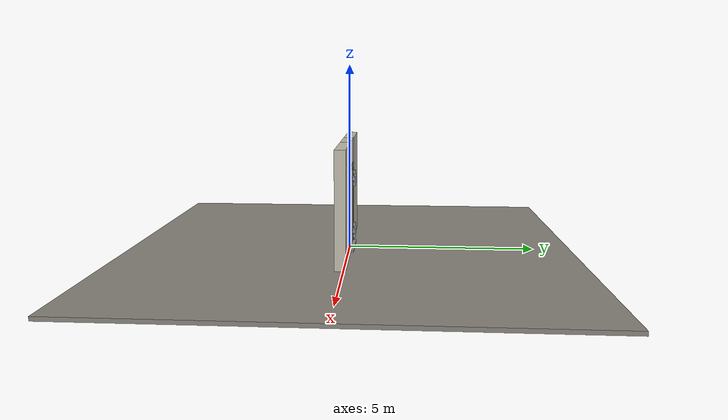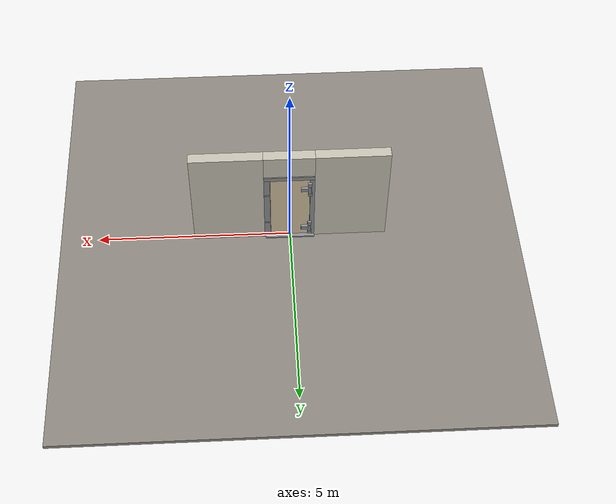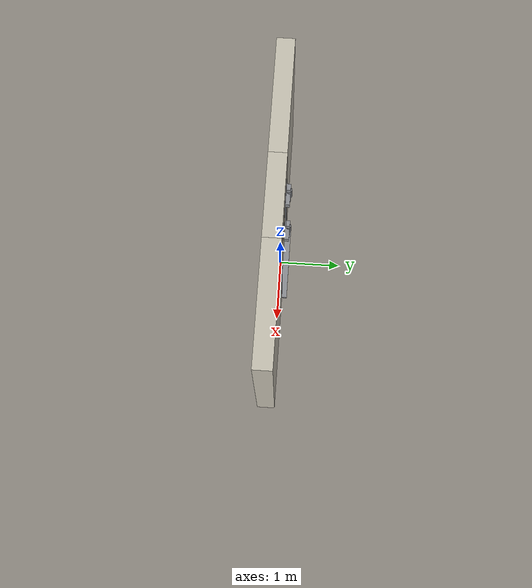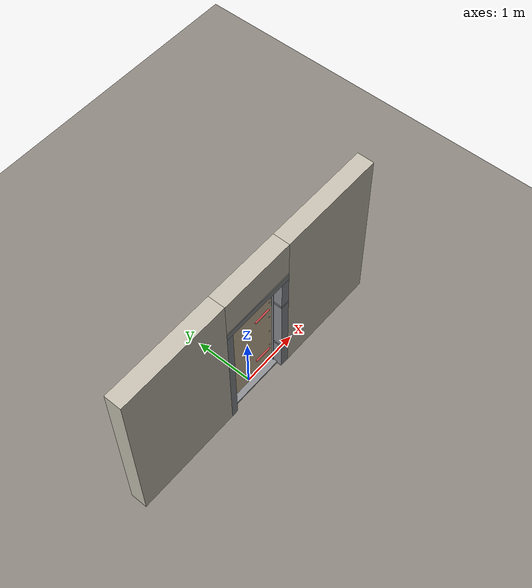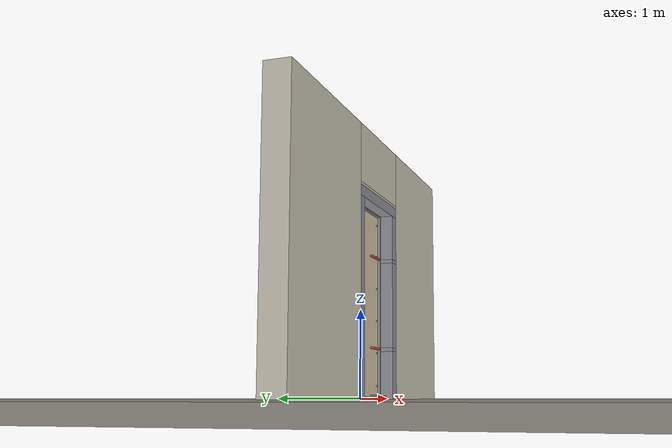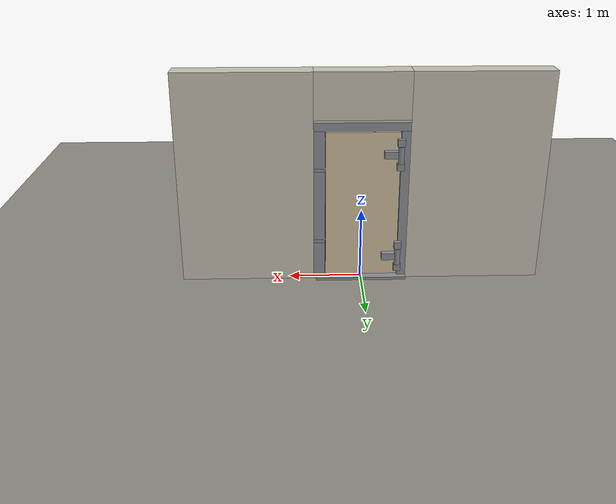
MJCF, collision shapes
<?xml version="1.0" ?>
<mujoco model="db0960_blast_full">
  <compiler angle="radian" meshdir="../../hardware" texturedir="../../textures" autolimits="true" inertiafromgeom="false"/>
  <option timestep="0.002" integrator="implicitfast" cone="elliptic" impratio="10" noslip_iterations="3">
    <flag multiccd="enable"/>
  </option>
  <size memory="16M"/>
  <default>
    <geom condim="4" solref="0.005 1" solimp="0.95 0.99 0.001"/>
    <joint solreflimit="0.005 1" solimplimit="0.95 0.99 0.001"/>
    <tendon solreflimit="0.005 1"/>
    <equality solref="0.002 1"/>
  </default>
  <visual>
    <headlight ambient="0.4 0.4 0.4" diffuse="0.7 0.7 0.7" specular="0.2 0.2 0.2"/>
    <quality shadowsize="4096"/>
    <map znear="0.01" zfar="60"/>
  </visual>
  <asset>
    <mesh name="lever_c7a1f2892f" file="lever_c7a1f2892f.obj"/>
    <material name="mat_floor" rgba="0.55 0.53 0.5 1" specular="0.2" shininess="0.15" reflectance="0"/>
    <material name="mat_wall" rgba="0.78 0.76 0.7 1" specular="0.2" shininess="0.1" reflectance="0"/>
    <material name="mat_leaf" rgba="0.82 0.75 0.62 1" specular="0.23" shininess="0.46" reflectance="0.02"/>
    <material name="mat_rivet" rgba="0.55 0.56 0.58 1" specular="0.8" shininess="0.55" reflectance="0.4"/>
    <material name="mat_op_nickel_satin" rgba="0.72 0.7 0.66 1" specular="0.8" shininess="0.65" reflectance="0.4"/>
    <material name="mat_vault_bolt" rgba="0.75 0.76 0.77 1" specular="0.8" shininess="0.65" reflectance="0.4"/>
    <material name="mat_frame" rgba="0.55 0.56 0.58 1" specular="0.8" shininess="0.55" reflectance="0.4"/>
    <material name="mat_seal" rgba="0.1 0.1 0.1 1" specular="0.2" shininess="0.1" reflectance="0"/>
    <material name="mat_hinge" rgba="0.55 0.56 0.58 1" specular="0.8" shininess="0.55" reflectance="0.4"/>
    <texture name="skybox" type="skybox" builtin="gradient" rgb1="0.6 0.7 0.85" rgb2="0.9 0.92 0.95" width="256" height="256"/>
  </asset>
  <worldbody>
    <light name="sun" pos="1.5 -2.5 4" dir="-0.3 0.5 -0.8" directional="true" diffuse="0.8 0.8 0.8" specular="0.3 0.3 0.3" castshadow="true"/>
    <light name="fill" pos="-1.5 2.5 3" dir="0.3 -0.5 -0.7" directional="true" diffuse="0.35 0.35 0.4" castshadow="false"/>
    <camera name="robot_view" pos="0 -2.739375 1.829625" xyaxes="1 0 0 0 0.26963 0.962964" fovy="52"/>
    <camera name="far_view" pos="0 2.579375 1.829625" xyaxes="-1 0 0 0 -0.26963 0.962964" fovy="52"/>
    <camera name="iso" pos="2.021125 -2.313875 2.255125" xyaxes="0.741536 0.670913 0 -0.242917 0.268487 0.932151" fovy="46"/>
    <camera name="detail_handle" pos="0.306 -0.9 0.855" xyaxes="0.97561 0.219512 0 -0.070934 0.315262 0.94635" fovy="38"/>
    <geom name="floor" type="box" size="6 6 0.05" pos="0 0 -0.05" material="mat_floor" group="0" contype="1" conaffinity="1" friction="0.8 0.005 0.0001" density="2400"/>
    <geom name="wall_left" type="box" size="0.935 0.14 1.485" pos="-1.565 -0.08 1.485" material="mat_wall" group="0" contype="1" conaffinity="1" friction="0.6 0.005 0.0001" density="800"/>
    <geom name="wall_right" type="box" size="0.92 0.14 1.485" pos="1.58 -0.08 1.485" material="mat_wall" group="0" contype="1" conaffinity="1" friction="0.6 0.005 0.0001" density="800"/>
    <geom name="wall_header" type="box" size="0.645 0.14 0.325" pos="0.015 -0.08 2.645" material="mat_wall" group="0" contype="1" conaffinity="1" friction="0.6 0.005 0.0001" density="800"/>
    <geom name="jamb_hinge" type="box" size="0.06 0.14 1.085" pos="-0.57 -0.08 1.085" material="mat_frame" group="0" contype="1" conaffinity="1" friction="0.6 0.005 0.0001" density="300"/>
    <geom name="strike_575_wall_n" type="box" size="0.075 0.101 0.021" pos="0.585 -0.119 0.575" material="mat_frame" group="0" contype="1" conaffinity="1" friction="0.6 0.005 0.0001" density="300"/>
    <geom name="strike_575_wall_p" type="box" size="0.075 0.021 0.021" pos="0.585 0.039 0.575" material="mat_frame" group="0" contype="1" conaffinity="1" friction="0.6 0.005 0.0001" density="300"/>
    <geom name="strike_575_back" type="box" size="0.042 0.018 0.021" pos="0.618 0 0.575" material="mat_frame" group="0" contype="1" conaffinity="1" friction="0.6 0.005 0.0001" density="300"/>
    <geom name="strike_1625_wall_n" type="box" size="0.075 0.101 0.021" pos="0.585 -0.119 1.625" material="mat_frame" group="0" contype="1" conaffinity="1" friction="0.6 0.005 0.0001" density="300"/>
    <geom name="strike_1625_wall_p" type="box" size="0.075 0.021 0.021" pos="0.585 0.039 1.625" material="mat_frame" group="0" contype="1" conaffinity="1" friction="0.6 0.005 0.0001" density="300"/>
    <geom name="strike_1625_back" type="box" size="0.042 0.018 0.021" pos="0.618 0 1.625" material="mat_frame" group="0" contype="1" conaffinity="1" friction="0.6 0.005 0.0001" density="300"/>
    <geom name="jamb_strike_0" type="box" size="0.075 0.14 0.277" pos="0.585 -0.08 0.277" material="mat_frame" group="0" contype="1" conaffinity="1" friction="0.6 0.005 0.0001" density="300"/>
    <geom name="jamb_strike_1" type="box" size="0.075 0.14 0.504" pos="0.585 -0.08 1.1" material="mat_frame" group="0" contype="1" conaffinity="1" friction="0.6 0.005 0.0001" density="300"/>
    <geom name="jamb_strike_2" type="box" size="0.075 0.14 0.262" pos="0.585 -0.08 1.908" material="mat_frame" group="0" contype="1" conaffinity="1" friction="0.6 0.005 0.0001" density="300"/>
    <geom name="jamb_head" type="box" size="0.645 0.14 0.06" pos="0.015 -0.08 2.23" material="mat_frame" group="0" contype="1" conaffinity="1" friction="0.6 0.005 0.0001" density="300"/>
    <geom name="head_stud" type="box" size="0.645 0.14 0.015" pos="0.015 -0.08 2.305" material="mat_wall" group="0" contype="1" conaffinity="1" friction="0.6 0.005 0.0001" density="500"/>
    <geom name="stop_hinge" type="box" size="0.0055 0.016 1.085" pos="-0.5045 -0.0565 1.085" material="mat_frame" group="0" contype="1" conaffinity="1" friction="0.6 0.005 0.0001" density="300"/>
    <geom name="stop_strike" type="box" size="0.0055 0.016 1.085" pos="0.5045 -0.0565 1.085" material="mat_frame" group="0" contype="1" conaffinity="1" friction="0.6 0.005 0.0001" density="300"/>
    <geom name="stop_head" type="box" size="0.51 0.016 0.0055" pos="0 -0.0565 2.1645" material="mat_frame" group="0" contype="1" conaffinity="1" friction="0.6 0.005 0.0001" density="300"/>
    <geom name="seal_hinge" type="box" size="0.004 0.006 1.085" pos="-0.507 -0.046 1.085" material="mat_seal" group="1" contype="0" conaffinity="0" density="1100"/>
    <geom name="seal_strike" type="box" size="0.004 0.006 1.085" pos="0.507 -0.046 1.085" material="mat_seal" group="1" contype="0" conaffinity="0" density="1100"/>
    <geom name="seal_head" type="box" size="0.49 0.006 0.008" pos="0 -0.046 2.158" material="mat_seal" group="1" contype="0" conaffinity="0" density="1100"/>
    <geom name="sill_step" type="box" size="0.63 0.14 0.02" pos="0 0 0.02" material="mat_frame" group="0" contype="1" conaffinity="1" friction="0.6 0.005 0.0001" density="7850"/>
    <geom name="hinge_0_bracket_b" type="box" size="0.05 0.0325 0.05" pos="-0.504 0.0925 0.18" material="mat_hinge" group="1" contype="0" conaffinity="0" density="7850"/>
    <geom name="hinge_0_bracket_t" type="box" size="0.05 0.0325 0.05" pos="-0.504 0.0925 0.52" material="mat_hinge" group="1" contype="0" conaffinity="0" density="7850"/>
    <geom name="hinge_1_bracket_b" type="box" size="0.05 0.0325 0.05" pos="-0.504 0.0925 1.68" material="mat_hinge" group="1" contype="0" conaffinity="0" density="7850"/>
    <geom name="hinge_1_bracket_t" type="box" size="0.05 0.0325 0.05" pos="-0.504 0.0925 2.02" material="mat_hinge" group="1" contype="0" conaffinity="0" density="7850"/>
    <site name="approach_point" pos="0 -1.5 0" quat="1 0 0 0" size="0.05" rgba="0.2 0.9 0.2 0.5" group="4"/>
    <site name="goal_point" pos="0 1.5 0" quat="1 0 0 0" size="0.05" rgba="0.2 0.9 0.2 0.5" group="4"/>
    <site name="door_plane_center" pos="0 0 1.085" quat="1 0 0 0" size="0.02" rgba="0.2 0.9 0.2 0.5" group="4"/>
    <body name="leaf" pos="-0.51 0 0">
      <inertial pos="0.480916 0.005169 1.1" mass="785.166123" quat="0.506107 0.493818 -0.506107 0.493818" diaginertia="70.821690352 298.258637031 367.621697394"/>
      <joint name="leaf_hinge" type="hinge" axis="0 0 1" pos="0.006 0.105 0" limited="true" range="0 1.745329" solreflimit="0.02 1" damping="0.42926" frictionloss="17.90975" armature="0.5"/>
      <geom name="leaf_slab" type="box" size="0.5 0.04 1.05" pos="0.506 0 1.1" material="mat_leaf" group="0" contype="1" conaffinity="1" friction="0.45 0.005 0.0001" density="1"/>
      <geom name="leaf_rivet_0_0" type="sphere" size="0.012" pos="0.056 -0.04 0.15" material="mat_rivet" group="2" contype="0" conaffinity="0" density="7850"/>
      <geom name="leaf_rivet_0_1" type="sphere" size="0.012" pos="0.956 -0.04 0.15" material="mat_rivet" group="2" contype="0" conaffinity="0" density="7850"/>
      <geom name="leaf_rivet_1_0" type="sphere" size="0.012" pos="0.056 -0.04 0.53" material="mat_rivet" group="2" contype="0" conaffinity="0" density="7850"/>
      <geom name="leaf_rivet_1_1" type="sphere" size="0.012" pos="0.956 -0.04 0.53" material="mat_rivet" group="2" contype="0" conaffinity="0" density="7850"/>
      <geom name="leaf_rivet_2_0" type="sphere" size="0.012" pos="0.056 -0.04 0.91" material="mat_rivet" group="2" contype="0" conaffinity="0" density="7850"/>
      <geom name="leaf_rivet_2_1" type="sphere" size="0.012" pos="0.956 -0.04 0.91" material="mat_rivet" group="2" contype="0" conaffinity="0" density="7850"/>
      <geom name="leaf_rivet_3_0" type="sphere" size="0.012" pos="0.056 -0.04 1.29" material="mat_rivet" group="2" contype="0" conaffinity="0" density="7850"/>
      <geom name="leaf_rivet_3_1" type="sphere" size="0.012" pos="0.956 -0.04 1.29" material="mat_rivet" group="2" contype="0" conaffinity="0" density="7850"/>
      <geom name="leaf_rivet_4_0" type="sphere" size="0.012" pos="0.056 -0.04 1.67" material="mat_rivet" group="2" contype="0" conaffinity="0" density="7850"/>
      <geom name="leaf_rivet_4_1" type="sphere" size="0.012" pos="0.956 -0.04 1.67" material="mat_rivet" group="2" contype="0" conaffinity="0" density="7850"/>
      <geom name="leaf_rivet_5_0" type="sphere" size="0.012" pos="0.056 -0.04 2.05" material="mat_rivet" group="2" contype="0" conaffinity="0" density="7850"/>
      <geom name="leaf_rivet_5_1" type="sphere" size="0.012" pos="0.956 -0.04 2.05" material="mat_rivet" group="2" contype="0" conaffinity="0" density="7850"/>
      <geom name="hinge_0" type="cylinder" size="0.04 0.12" pos="0.006 0.105 0.35" material="mat_hinge" group="1" contype="0" conaffinity="0" density="7850"/>
      <geom name="hinge_0_arm" type="box" size="0.11 0.04 0.05" pos="0.116 0.08 0.35" material="mat_hinge" group="1" contype="0" conaffinity="0" density="7850"/>
      <geom name="hinge_1" type="cylinder" size="0.04 0.12" pos="0.006 0.105 1.85" material="mat_hinge" group="1" contype="0" conaffinity="0" density="7850"/>
      <geom name="hinge_1_arm" type="box" size="0.11 0.04 0.05" pos="0.116 0.08 1.85" material="mat_hinge" group="1" contype="0" conaffinity="0" density="7850"/>
      <body name="dog_0" pos="0.886 0 0.575">
        <inertial pos="-0.138181 -0.092433 0" mass="4.666646" quat="-0.044336 0 0 0.999017" diaginertia="0.001676913 0.056977311 0.05779918"/>
        <joint name="dog_0_hinge" type="hinge" axis="0 -1 0" limited="true" range="0 1.5708" damping="1" frictionloss="6" armature="0.005"/>
        <geom name="dog_0_lever" type="mesh" mesh="lever_c7a1f2892f" pos="0 -0.04 0" quat="0.707107 0.707107 0 0" material="mat_op_nickel_satin" group="1" contype="0" conaffinity="0" density="7800"/>
        <geom name="dog_0_lever_col" type="capsule" size="0.015 0.14" pos="-0.15 -0.1 0" quat="0.707107 0 0.707107 0" material="mat_op_nickel_satin" group="3" contype="1" conaffinity="1" rgba="0.8 0.3 0.3 0.25" friction="0.7 0.01 0.0001" density="7800"/>
        <site name="dog_0_grip" pos="-0.25 -0.1 0" quat="1 0 0 0" size="0.012" rgba="0.2 0.9 0.2 0.5" group="4"/>
      </body>
      <body name="bolt_0" pos="1.006 0 0.575">
        <inertial pos="-0.02 0 0" mass="0.942793" quat="0 0 0.707107 0.707107" diaginertia="0.00011723 0.001823954 0.001823954"/>
        <joint name="bolt_0_slide" type="slide" axis="-1 0 0" limited="true" range="0 0.06" damping="20" frictionloss="25" armature="0.1"/>
        <geom name="bolt_0_geom" type="capsule" size="0.016 0.064" pos="-0.02 0 0" quat="0.707107 0 0.707107 0" material="mat_vault_bolt" group="0" contype="1" conaffinity="1" friction="0.3 0.005 0.0001" density="7850"/>
      </body>
      <body name="dog_1" pos="0.886 0 1.625">
        <inertial pos="-0.138181 -0.092433 0" mass="4.666646" quat="-0.044336 0 0 0.999017" diaginertia="0.001676913 0.056977311 0.05779918"/>
        <joint name="dog_1_hinge" type="hinge" axis="0 -1 0" limited="true" range="0 1.5708" damping="1" frictionloss="6" armature="0.005"/>
        <geom name="dog_1_lever" type="mesh" mesh="lever_c7a1f2892f" pos="0 -0.04 0" quat="0.707107 0.707107 0 0" material="mat_op_nickel_satin" group="1" contype="0" conaffinity="0" density="7800"/>
        <geom name="dog_1_lever_col" type="capsule" size="0.015 0.14" pos="-0.15 -0.1 0" quat="0.707107 0 0.707107 0" material="mat_op_nickel_satin" group="3" contype="1" conaffinity="1" rgba="0.8 0.3 0.3 0.25" friction="0.7 0.01 0.0001" density="7800"/>
        <site name="dog_1_grip" pos="-0.25 -0.1 0" quat="1 0 0 0" size="0.012" rgba="0.2 0.9 0.2 0.5" group="4"/>
      </body>
      <body name="bolt_1" pos="1.006 0 1.625">
        <inertial pos="-0.02 0 0" mass="0.942793" quat="0 0 0.707107 0.707107" diaginertia="0.00011723 0.001823954 0.001823954"/>
        <joint name="bolt_1_slide" type="slide" axis="-1 0 0" limited="true" range="0 0.06" damping="20" frictionloss="25" armature="0.1"/>
        <geom name="bolt_1_geom" type="capsule" size="0.016 0.064" pos="-0.02 0 0" quat="0.707107 0 0.707107 0" material="mat_vault_bolt" group="0" contype="1" conaffinity="1" friction="0.3 0.005 0.0001" density="7850"/>
      </body>
    </body>
  </worldbody>
  <equality>
    <joint name="lever_bolt_0" joint1="bolt_0_slide" joint2="dog_0_hinge" polycoef="0 0.038197 0 0 0" active="true"/>
    <joint name="lever_bolt_1" joint1="bolt_1_slide" joint2="dog_1_hinge" polycoef="0 0.038197 0 0 0" active="true"/>
  </equality>
  <sensor>
    <jointpos name="leaf_hinge_pos" joint="leaf_hinge"/>
    <jointvel name="leaf_hinge_vel" joint="leaf_hinge"/>
    <jointpos name="dog_0_hinge_pos" joint="dog_0_hinge"/>
    <jointvel name="dog_0_hinge_vel" joint="dog_0_hinge"/>
    <jointpos name="bolt_0_slide_pos" joint="bolt_0_slide"/>
    <jointvel name="bolt_0_slide_vel" joint="bolt_0_slide"/>
    <jointpos name="dog_1_hinge_pos" joint="dog_1_hinge"/>
    <jointvel name="dog_1_hinge_vel" joint="dog_1_hinge"/>
    <jointpos name="bolt_1_slide_pos" joint="bolt_1_slide"/>
    <jointvel name="bolt_1_slide_vel" joint="bolt_1_slide"/>
  </sensor>
</mujoco>
